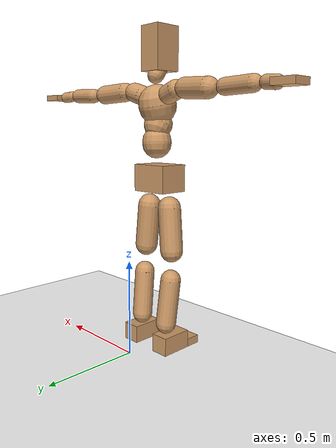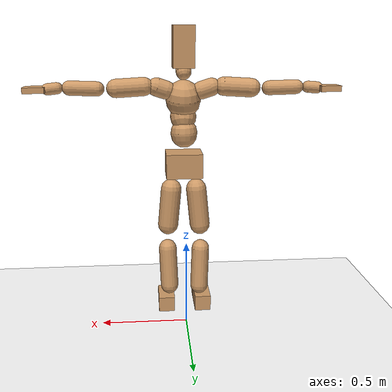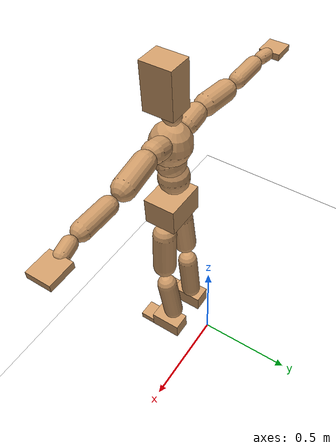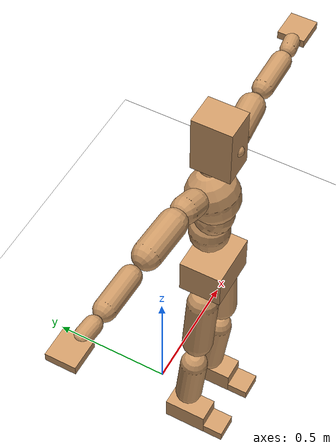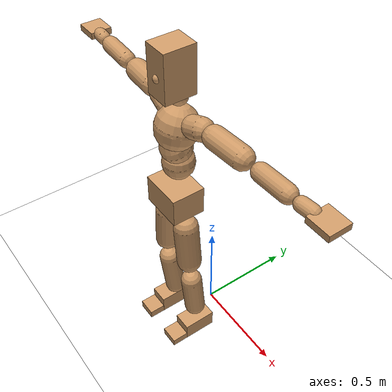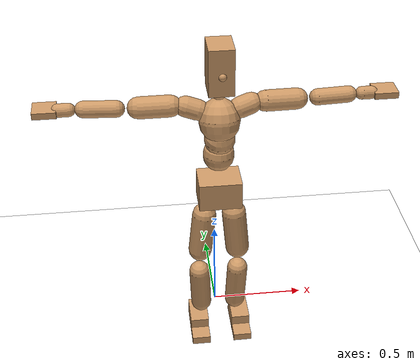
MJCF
<mujoco model="humanoid">
  <option integrator="implicitfast" />

  <visual>
    <global offwidth="1280" offheight="960" />
    <headlight active="1" ambient="0.34 0.34 0.34" diffuse="0.5 0.5 0.5" />
  </visual>

  <default>
    <joint damping="2" stiffness="2" armature="0.01" limited="true" solimplimit="0 .99 .01" />
    <geom condim="1" friction="0.7 0.005 0.0001" solimp=".99 .99 .003" solref="0.015 1" margin="0.001" rgba="0.8 0.6 .4 1" />
    <default class="smplcontact">
      <geom condim="3" friction="1. 0.005 0.0001" solref="0.015 1" solimp="0.98 0.98 0.001" priority="1" />
    </default>
    <default class="stiff_medium">
      <joint stiffness="10" />
    </default>
    <default class="stiff_medium_higher">
      <joint stiffness="50" />
    </default>
    <default class="stiff_high">
      <joint stiffness="100" />
    </default>
  </default>

  <asset>
    <texture type="skybox" builtin="gradient" rgb1="0.99 0.99 0.99" rgb2="0.608 0.828 0.892" width="100" />
    <texture builtin="flat" height="1278" mark="cross" markrgb="1 1 1" name="texgeom" random="0.01" rgb1="0.8 0.6 0.4" rgb2="0.8 0.6 0.4" type="cube" width="127" />
    <texture name="texplane" type="2d" builtin="checker" markrgb="1 1 1" rgb1="0.756 0.772 0.76" rgb2="0.6 0.6 0.6" width="100" height="100" />
    <material name="MatPlane" reflectance="0.5" texture="texplane" texrepeat="1 1" texuniform="true" />
    <material name="geom" texture="texgeom" texuniform="true" />
  </asset>

  <worldbody>
    <light name="tracking_light" pos="0 0 7" dir="0 0 -1" directional="true" cutoff="100" exponent="1" diffuse="1 1 1" specular="0.1 0.1 0.1" mode="trackcom" />
    <camera name="back" pos="0 3 2.4" xyaxes="-1 0 0 0 -1 2" mode="trackcom" />
    <camera name="side" pos="-3 0 2.4" xyaxes="0 -1 0 1 0 2" mode="trackcom" />
    <camera name="front_side" pos="-2.8 -2.8 0.8" xyaxes="0.5 -0.5 0 0.1 0.1 1" mode="trackcom" />
    <geom condim="3" name="floor" pos="0 0 0" rgba="1 1 1 1" size="100 100 .2" type="plane" material="MatPlane" />
    <body name="Pelvis" pos="-0.0018 -0.2233 0.9367" euler="90 0 0">
      <site name="Pelvis" size="0.01" />
      <freejoint name="Pelvis" />
      <geom type="box" pos="-0.0000 -0.0121 -0.0055" size="0.1069 0.0722 0.083" quat="1.0000 0.0000 0.0000 0.0000" density="3165.830099" name="Pelvis" />
      <body name="L_Hip" pos="0.0695 -0.0914 -0.0068">
        <joint name="L_Hip_x" type="hinge" pos="0 0 0" axis="1 0 0" stiffness="10.0" range="-160.0 22.92" class="stiff_medium" damping="15.0" armature="0.01"/>
        <joint name="L_Hip_y" type="hinge" pos="0 0 0" axis="0 1 0" stiffness="10.0" range="-70.0 70.0" class="stiff_medium" damping="10.000000000000002" armature="0.010000000000000005"/>
        <joint name="L_Hip_z" type="hinge" pos="0 0 0" axis="0 0 1" stiffness="10.0" range="-28.65 90.0" class="stiff_medium" damping="9.999999999999998" armature="0.009999999999999998"/>
        <geom type="capsule" density="2040.816327" fromto="0.0069 -0.075 -0.0009 0.0274 -0.3002 -0.0036" size="0.0615" name="L_Hip" />
        <body name="L_Knee" pos="0.0343 -0.3752 -0.0045">
          <joint name="L_Knee_x" type="hinge" pos="0 0 0" axis="1 0 0" range="-5.16 171.89" damping="7.999999999999999" armature="0.009999999999999998" stiffness="2.0"/>
          <joint name="L_Knee_y" type="hinge" pos="0 0 0" axis="0 1 0" range="-4.58 6.88" damping="8.000000000000002" armature="0.010000000000000007" stiffness="2.0"/>
          <joint name="L_Knee_z" type="hinge" pos="0 0 0" axis="0 0 1" range="-6.88 4.58" damping="7.999999999999999" armature="0.009999999999999998" stiffness="2.0"/>
          <geom type="capsule" density="1234.567901" fromto="-0.0027 -0.0796 -0.0087 -0.0109 -0.3184 -0.035" size="0.0541" name="L_Knee" />
          <body name="L_Ankle" pos="-0.0136 -0.398 -0.0437">
            <joint name="L_Ankle_x" type="hinge" pos="0 0 0" axis="1 0 0" range="-45.84 45.84" class="stiff_medium" damping="6.0000000000000195" armature="0.010000000000000066" stiffness="10.0"/>
            <joint name="L_Ankle_y" type="hinge" pos="0 0 0" axis="0 1 0" range="-74.48 22.92" class="stiff_medium" damping="3.0" armature="0.010000000000000002" stiffness="10.0"/>
            <joint name="L_Ankle_z" type="hinge" pos="0 0 0" axis="0 0 1" range="-4.58 4.58" class="stiff_medium" damping="5.999999999999853" armature="0.009999999999999508" stiffness="10.0"/>
            <geom type="box" pos="0.0233 -0.0239 0.0242" size="0.0483 0.0464 0.085" quat="1.0000 0.0000 0.0000 0.0000" density="449.071558" name="L_Ankle" class="smplcontact" />
            <body name="L_Toe" pos="0.0264 -0.0558 0.1193">
              <joint name="L_Toe_x" type="hinge" pos="0 0 0" axis="1 0 0" range="-91.67 22.92" armature="0.009999999999999563" damping="1.9999999999999563" stiffness="2.0"/>
              <joint name="L_Toe_y" type="hinge" pos="0 0 0" axis="0 1 0" range="-4.58 4.58" armature="0.009999999999999976" damping="1.9999999999999976" stiffness="2.0"/>
              <joint name="L_Toe_z" type="hinge" pos="0 0 0" axis="0 0 1" range="-4.58 4.58" armature="0.009999999999999872" damping="1.9999999999999871" stiffness="2.0"/>
              <geom type="box" pos="-0.003 0.0055 0.0248" size="0.0478 0.02 0.0496" quat="1.0000 0.0000 0.0000 0.0000" density="423.206892" name="L_Toe" class="smplcontact" />
            </body>
          </body>
        </body>
      </body>
      <body name="R_Hip" pos="-0.0677 -0.0905 -0.0043">
        <joint name="R_Hip_x" type="hinge" pos="0 0 0" axis="1 0 0" stiffness="10.0" range="-160.0 22.92" class="stiff_medium" damping="15.0" armature="0.01"/>
        <joint name="R_Hip_y" type="hinge" pos="0 0 0" axis="0 1 0" stiffness="10.0" range="-70.0 70.0" class="stiff_medium" damping="10.000000000000002" armature="0.010000000000000005"/>
        <joint name="R_Hip_z" type="hinge" pos="0 0 0" axis="0 0 1" stiffness="10.0" range="-90.0 28.65" class="stiff_medium" damping="9.999999999999998" armature="0.009999999999999998"/>
        <geom type="capsule" density="2040.816327" fromto="-0.0077 -0.0765 -0.0018 -0.0306 -0.3061 -0.0071" size="0.0606" name="R_Hip" />
        <body name="R_Knee" pos="-0.0383 -0.3826 -0.0089">
          <joint name="R_Knee_x" type="hinge" pos="0 0 0" axis="1 0 0" range="-5.16 171.89" damping="7.999999999999999" armature="0.009999999999999998" stiffness="2.0"/>
          <joint name="R_Knee_y" type="hinge" pos="0 0 0" axis="0 1 0" range="-6.88 4.58" damping="8.000000000000002" armature="0.010000000000000007" stiffness="2.0"/>
          <joint name="R_Knee_z" type="hinge" pos="0 0 0" axis="0 0 1" range="-4.58 6.88" damping="7.999999999999999" armature="0.009999999999999998" stiffness="2.0"/>
          <geom type="capsule" density="1234.567901" fromto="0.0032 -0.0797 -0.0085 0.0126 -0.3187 -0.0338" size="0.0541" name="R_Knee" />
          <body name="R_Ankle" pos="0.0158 -0.3984 -0.0423">
            <joint name="R_Ankle_x" type="hinge" pos="0 0 0" axis="1 0 0" range="-45.84 45.84" class="stiff_medium" damping="6.0000000000000195" armature="0.010000000000000066" stiffness="10.0"/>
            <joint name="R_Ankle_y" type="hinge" pos="0 0 0" axis="0 1 0" range="-22.92 74.48" class="stiff_medium" damping="3.0" armature="0.010000000000000002" stiffness="10.0"/>
            <joint name="R_Ankle_z" type="hinge" pos="0 0 0" axis="0 0 1" range="-4.58 4.58" class="stiff_medium" damping="5.999999999999853" armature="0.009999999999999508" stiffness="10.0"/>
            <geom type="box" pos="-0.0212 -0.0174 0.0256" size="0.0483 0.0478 0.0865" quat="1.0000 0.0000 0.0000 0.0000" density="434.700981" name="R_Ankle" class="smplcontact" />
            <body name="R_Toe" pos="-0.0254 -0.0481 0.1233">
              <joint name="R_Toe_x" type="hinge" pos="0 0 0" axis="1 0 0" range="-91.67 22.92" armature="0.009999999999999563" damping="1.9999999999999563" stiffness="2.0"/>
              <joint name="R_Toe_y" type="hinge" pos="0 0 0" axis="0 1 0" range="-4.58 4.58" armature="0.009999999999999976" damping="1.9999999999999976" stiffness="2.0"/>
              <joint name="R_Toe_z" type="hinge" pos="0 0 0" axis="0 0 1" range="-4.58 4.58" armature="0.009999999999999872" damping="1.9999999999999871" stiffness="2.0"/>
              <geom type="box" pos="0.0042 0.0045 0.0227" size="0.0479 0.0216 0.0493" quat="1.0000 0.0000 0.0000 0.0000" density="407.384095" name="R_Toe" class="smplcontact" />
            </body>
          </body>
        </body>
      </body>
      <body name="Torso" pos="-0.0025 0.109 -0.0267">
        <joint name="Torso_x" type="hinge" pos="0 0 0" axis="1 0 0" range="-25.78 57.3" class="stiff_medium" damping="14.947171773947275" armature="0.009944991970437769" stiffness="9.984609772727271"/>
        <joint name="Torso_y" type="hinge" pos="0 0 0" axis="0 1 0" range="-57.3 57.3" class="stiff_high" damping="19.969811656836875" armature="0.009998848371253175" stiffness="99.7098272727273"/>
        <joint name="Torso_z" type="hinge" pos="0 0 0" axis="0 0 1" range="-34.38 34.38" class="stiff_high" damping="19.951578052942025" armature="0.00996309672207051" stiffness="99.88497499999998"/>
        <geom type="capsule" density="2040.816327" fromto="0.0025 0.0608 0.0005 0.003 0.0743 0.0006" size="0.0769" name="Torso" />
        <body name="Spine" pos="0.0055 0.1352 0.0011">
          <joint name="Spine_x" type="hinge" pos="0 0 0" axis="1 0 0" stiffness="9.97264659090909" range="-25.78 57.3" class="stiff_medium" damping="14.906278145406802" armature="0.00990251467118218"/>
          <joint name="Spine_y" type="hinge" pos="0 0 0" axis="0 1 0" stiffness="9.972929772727273" range="-57.3 57.3" class="stiff_high" damping="7.988726639718705" armature="0.009998903716507041"/>
          <joint name="Spine_z" type="hinge" pos="0 0 0" axis="0 0 1" stiffness="19.93845727272727" range="-34.38 34.38" class="stiff_high" damping="11.954192836824214" armature="0.009954431586468174"/>
          <geom type="capsule" density="2040.816327" fromto="0.0007 0.0238 0.0114 0.0008 0.0291 0.014" size="0.0755" name="Spine" />
          <body name="Chest" pos="0.0015 0.0529 0.0254">
            <joint name="Chest_x" type="hinge" pos="0 0 0" axis="1 0 0" stiffness="9.94800590909091" range="-25.78 57.3" class="stiff_medium" damping="14.868909162809407" armature="0.009877332277543458"/>
            <joint name="Chest_y" type="hinge" pos="0 0 0" axis="0 1 0" stiffness="9.98093590909091" range="-57.3 57.3" class="stiff_high" damping="7.9924456891287" armature="0.010000187588165114"/>
            <joint name="Chest_z" type="hinge" pos="0 0 0" axis="0 0 1" stiffness="19.916765454545455" range="-34.38 34.38" class="stiff_high" damping="11.946690429040489" armature="0.009952768779220938"/>
            <geom type="capsule" density="2040.816327" fromto="-0.0009 0.0682 -0.0173 -0.001 0.0833 -0.0212" size="0.1002" name="Chest" />
            <body name="Neck" pos="-0.0028 0.2139 -0.0429">
              <joint name="Neck_x" type="hinge" pos="0 0 0" axis="1 0 0" range="-28.65 57.3" class="stiff_medium_higher" damping="9.690780533805741" armature="0.009612808295471939" stiffness="48.84692613636364"/>
              <joint name="Neck_y" type="hinge" pos="0 0 0" axis="0 1 0" range="-40.11 40.11" class="stiff_medium_higher" damping="9.804403096524636" armature="0.009843933114499562" stiffness="48.82515909090909"/>
              <joint name="Neck_z" type="hinge" pos="0 0 0" axis="0 0 1" range="-40.11 40.11" class="stiff_medium_higher" damping="9.68205276444564" armature="0.009607499285606658" stiffness="48.78592386363636"/>
              <geom type="capsule" density="1000" fromto="0.001 0.013 0.0103 0.0041 0.052 0.0411" size="0.0436" name="Neck" />
              <body name="Head" pos="0.00507 0.063375 0.0500175">
                <joint name="Head_x" type="hinge" pos="0 0 0" axis="1 0 0" range="-28.65 57.3" class="stiff_medium_higher" damping="1.9477960607098663" armature="0.009727973061838134" stiffness="48.75000000000001"/>
                <joint name="Head_y" type="hinge" pos="0 0 0" axis="0 1 0" range="-40.11 40.11" class="stiff_medium_higher" damping="1.9725930222531005" armature="0.009977239054978514" stiffness="48.75000000000001"/>
                <joint name="Head_z" type="hinge" pos="0 0 0" axis="0 0 1" range="-40.11 40.11" class="stiff_medium_higher" damping="1.9465600502137563" armature="0.00971563084381585" stiffness="48.75000000000001"/>
                <geom type="box" pos="-0.004095 0.08541 -0.01131" size="0.0606 0.1154 0.076" quat="1.0000 0.0000 0.0000 0.0000" density="1018.069894" name="Head" />
                <geom type="capsule" name="nose" size="0.02 0.01" pos="0 0.06825 0.04875" quat="1 0 0 0" mass="0" contype="0" conaffinity="0" />
              </body>
            </body>
            <body name="L_Thorax" pos="0.0788 0.1217 -0.0341">
              <joint name="L_Thorax_x" type="hinge" pos="0 0 0" axis="1 0 0" range="-10.89 4.58" class="stiff_medium_higher" damping="19.999999999999975" armature="0.009999999999999978" stiffness="50.0"/>
              <joint name="L_Thorax_y" type="hinge" pos="0 0 0" axis="0 1 0" range="-28.65 17.19" class="stiff_medium_higher" damping="20.0" armature="0.01" stiffness="50.0"/>
              <joint name="L_Thorax_z" type="hinge" pos="0 0 0" axis="0 0 1" range="-31.51 40.11" class="stiff_medium_higher" damping="19.999999999999996" armature="0.009999999999999998" stiffness="50.0"/>
              <geom type="capsule" density="1000" fromto="0.0182 0.0061 -0.0018 0.0728 0.0244 -0.0071" size="0.0521" name="L_Thorax" />
              <body name="L_Shoulder" pos="0.091 0.0305 -0.0089">
                <joint name="L_Shoulder_x" type="hinge" pos="0 0 0" axis="1 0 0" range="-97.4 97.4" class="stiff_medium" damping="6.000000000000061" armature="0.010000000000000205" stiffness="10.0"/>
                <joint name="L_Shoulder_y" type="hinge" pos="0 0 0" axis="0 1 0" range="-108.86 80.21" class="stiff_medium" damping="6.0" armature="0.01" stiffness="10.0"/>
                <joint name="L_Shoulder_z" type="hinge" pos="0 0 0" axis="0 0 1" range="-97.4 85.94" class="stiff_medium" damping="6.000000000000002" armature="0.010000000000000005" stiffness="10.0"/>
                <geom type="capsule" density="1000" fromto="0.0519 -0.0026 -0.0055 0.2077 -0.0102 -0.022" size="0.0517" name="L_Shoulder" />
                <body name="L_Elbow" pos="0.2596 -0.0128 -0.0275">
                  <joint name="L_Elbow_x" type="hinge" pos="0 0 0" axis="1 0 0" range="-17.19 4.58" damping="4.999999999999982" armature="0.009999999999999929" stiffness="2.0"/>
                  <joint name="L_Elbow_y" type="hinge" pos="0 0 0" axis="0 1 0" range="-180.0 17.19" damping="5.000000000000005" armature="0.010000000000000023" stiffness="2.0"/>
                  <joint name="L_Elbow_z" type="hinge" pos="0 0 0" axis="0 0 1" range="-100.84 4.58" damping="5.000000000000002" armature="0.010000000000000009" stiffness="2.0"/>
                  <geom type="capsule" density="1000" fromto="0.0498 0.0018 -0.0002 0.1994 0.0072 -0.0009" size="0.0405" name="L_Elbow" />
                  <body name="L_Wrist" pos="0.2492 0.009 -0.0012">
                    <joint name="L_Wrist_x" type="hinge" pos="0 0 0" axis="1 0 0" range="-180.0 22.92" armature="0.009999999999999619" damping="1.9999999999999618" stiffness="2.0"/>
                    <joint name="L_Wrist_y" type="hinge" pos="0 0 0" axis="0 1 0" range="-17.19 17.19" armature="0.010000000000000047" damping="2.0000000000000044" stiffness="2.0"/>
                    <joint name="L_Wrist_z" type="hinge" pos="0 0 0" axis="0 0 1" range="-22.92 22.92" armature="0.010000000000000009" damping="2.000000000000001" stiffness="2.0"/>
                    <geom type="capsule" density="1000" fromto="0.0168 -0.0016 -0.003 0.0672 -0.0065 -0.012" size="0.0318" name="L_Wrist" class="smplcontact" />
                    <body name="L_Hand" pos="0.084 -0.0082 -0.0149">
                      <joint name="L_Hand_x" type="hinge" pos="0 0 0" axis="1 0 0" range="-17.19 17.19" armature="0.010000000000000018" damping="2.0000000000000018" stiffness="2.0"/>
                      <joint name="L_Hand_y" type="hinge" pos="0 0 0" axis="0 1 0" range="-51.57 51.57" armature="0.010000000000000174" damping="2.0000000000000173" stiffness="2.0"/>
                      <joint name="L_Hand_z" type="hinge" pos="0 0 0" axis="0 0 1" range="-91.67 91.67" armature="0.010000000000000252" damping="2.000000000000025" stiffness="2.0"/>
                      <geom type="box" pos="0.0493 0.001 -0.0058" size="0.0585 0.0158 0.0538" quat="1.0000 0.0000 0.0000 0.0000" density="400.552564" name="L_Hand" class="smplcontact" />
                    </body>
                  </body>
                </body>
              </body>
            </body>
            <body name="R_Thorax" pos="-0.0818 0.1188 -0.0386">
              <joint name="R_Thorax_x" type="hinge" pos="0 0 0" axis="1 0 0" range="-10.89 4.58" class="stiff_medium_higher" damping="19.999999999999975" armature="0.009999999999999978" stiffness="50.0"/>
              <joint name="R_Thorax_y" type="hinge" pos="0 0 0" axis="0 1 0" range="-17.19 28.65" class="stiff_medium_higher" damping="20.0" armature="0.01" stiffness="50.0"/>
              <joint name="R_Thorax_z" type="hinge" pos="0 0 0" axis="0 0 1" range="-40.11 31.51" class="stiff_medium_higher" damping="19.999999999999996" armature="0.009999999999999998" stiffness="50.0"/>
              <geom type="capsule" density="1000" fromto="-0.0192 0.0065 -0.0018 -0.0768 0.026 -0.0073" size="0.0511" name="R_Thorax" />
              <body name="R_Shoulder" pos="-0.096 0.0326 -0.0091">
                <joint name="R_Shoulder_x" type="hinge" pos="0 0 0" axis="1 0 0" range="-97.4 97.4" class="stiff_medium" damping="6.000000000000061" armature="0.010000000000000205" stiffness="10.0"/>
                <joint name="R_Shoulder_y" type="hinge" pos="0 0 0" axis="0 1 0" range="-80.21 108.86" class="stiff_medium" damping="6.0" armature="0.01" stiffness="10.0"/>
                <joint name="R_Shoulder_z" type="hinge" pos="0 0 0" axis="0 0 1" range="-85.94 97.4" class="stiff_medium" damping="6.000000000000002" armature="0.010000000000000005" stiffness="10.0"/>
                <geom type="capsule" density="1000" fromto="-0.0507 -0.0027 -0.0043 -0.203 -0.0107 -0.0171" size="0.0531" name="R_Shoulder" />
                <body name="R_Elbow" pos="-0.2537 -0.0133 -0.0214">
                  <joint name="R_Elbow_x" type="hinge" pos="0 0 0" axis="1 0 0" range="-17.19 4.58" damping="4.999999999999982" armature="0.009999999999999929" stiffness="2.0"/>
                  <joint name="R_Elbow_y" type="hinge" pos="0 0 0" axis="0 1 0" range="-17.19 180.0" damping="5.000000000000005" armature="0.010000000000000023" stiffness="2.0"/>
                  <joint name="R_Elbow_z" type="hinge" pos="0 0 0" axis="0 0 1" range="-4.58 100.84" damping="5.000000000000002" armature="0.010000000000000009" stiffness="2.0"/>
                  <geom type="capsule" density="1000" fromto="-0.0511 0.0016 -0.0011 -0.2042 0.0062 -0.0044" size="0.0408" name="R_Elbow" />
                  <body name="R_Wrist" pos="-0.2553 0.0078 -0.0056">
                    <joint name="R_Wrist_x" type="hinge" pos="0 0 0" axis="1 0 0" range="-180.0 22.92" armature="0.009999999999999619" damping="1.9999999999999618" stiffness="2.0"/>
                    <joint name="R_Wrist_y" type="hinge" pos="0 0 0" axis="0 1 0" range="-17.19 17.19" armature="0.010000000000000047" damping="2.0000000000000044" stiffness="2.0"/>
                    <joint name="R_Wrist_z" type="hinge" pos="0 0 0" axis="0 0 1" range="-22.92 22.92" armature="0.010000000000000009" damping="2.000000000000001" stiffness="2.0"/>
                    <geom type="capsule" density="1000" fromto="-0.0169 -0.0012 -0.0021 -0.0677 -0.0049 -0.0083" size="0.0326" name="R_Wrist" class="smplcontact" />
                    <body name="R_Hand" pos="-0.0846 -0.0061 -0.0103">
                      <joint name="R_Hand_x" type="hinge" pos="0 0 0" axis="1 0 0" range="-17.19 17.19" armature="0.010000000000000018" damping="2.0000000000000018" stiffness="2.0"/>
                      <joint name="R_Hand_y" type="hinge" pos="0 0 0" axis="0 1 0" range="-51.57 51.57" armature="0.010000000000000174" damping="2.0000000000000173" stiffness="2.0"/>
                      <joint name="R_Hand_z" type="hinge" pos="0 0 0" axis="0 0 1" range="-91.67 91.67" armature="0.010000000000000252" damping="2.000000000000025" stiffness="2.0"/>
                      <geom type="box" pos="-0.0462 -0.0009 -0.0079" size="0.0569 0.0164 0.0546" quat="1.0000 0.0000 0.0000 0.0000" density="403.679611" name="R_Hand" class="smplcontact" />
                    </body>
                  </body>
                </body>
              </body>
            </body>
          </body>
        </body>
      </body>
    </body>
  </worldbody>
  <actuator>
    <general name="L_Hip_x" joint="L_Hip_x" biastype="affine" gainprm="287.33006409732246" biasprm="-215.3247604770444 -180.0 -2.0" ctrllimited="true" ctrlrange="-1 1" forcerange="-360.0 360.0" />
    <general name="L_Hip_y" joint="L_Hip_y" biastype="affine" gainprm="219.9114857512855" biasprm="0.0 -180.0 -2.0000000000000004" ctrllimited="true" ctrlrange="-1 1" forcerange="-360.0 360.0" />
    <general name="L_Hip_z" joint="L_Hip_z" biastype="affine" gainprm="186.3749841742145" biasprm="96.3683546488669 -180.0 -1.9999999999999998" ctrllimited="true" ctrlrange="-1 1" forcerange="-360.0 360.0" />
    <general name="L_Knee_x" joint="L_Knee_x" biastype="affine" gainprm="278.10948965903646" biasprm="261.8988715665131 -180.0 -1.9999999999999998" ctrllimited="true" ctrlrange="-1 1" forcerange="-360.0 360.0" />
    <general name="L_Knee_y" joint="L_Knee_y" biastype="affine" gainprm="18.001325905069514" biasprm="3.612831551628262 -180.0 -2.0000000000000004" ctrllimited="true" ctrlrange="-1 1" forcerange="-360.0 360.0" />
    <general name="L_Knee_z" joint="L_Knee_z" biastype="affine" gainprm="18.001325905069514" biasprm="-3.612831551628262 -180.0 -1.9999999999999998" ctrllimited="true" ctrlrange="-1 1" forcerange="-360.0 360.0" />
    <general name="L_Ankle_x" joint="L_Ankle_x" biastype="affine" gainprm="72.00530362027807" biasprm="0.0 -90.0 -2.0000000000000067" ctrllimited="true" ctrlrange="-1 1" forcerange="-180.0 180.0" />
    <general name="L_Ankle_y" joint="L_Ankle_y" biastype="affine" gainprm="76.49778111491148" biasprm="-40.49512930477244 -90.0 -2.0" ctrllimited="true" ctrlrange="-1 1" forcerange="-180.0 180.0" />
    <general name="L_Ankle_z" joint="L_Ankle_z" biastype="affine" gainprm="7.1942471767206255" biasprm="0.0 -90.0 -1.9999999999999507" ctrllimited="true" ctrlrange="-1 1" forcerange="-180.0 180.0" />
    <general name="L_Toe_x" joint="L_Toe_x" biastype="affine" gainprm="71.99902043497087" biasprm="-43.19689898685965 -72.0 -0.7999999999999825" ctrllimited="true" ctrlrange="-1 1" forcerange="-144.0 144.0" />
    <general name="L_Toe_y" joint="L_Toe_y" biastype="affine" gainprm="5.755397741376501" biasprm="0.0 -72.0 -0.799999999999999" ctrllimited="true" ctrlrange="-1 1" forcerange="-144.0 144.0" />
    <general name="L_Toe_z" joint="L_Toe_z" biastype="affine" gainprm="5.755397741376501" biasprm="0.0 -72.0 -0.7999999999999949" ctrllimited="true" ctrlrange="-1 1" forcerange="-144.0 144.0" />
    <general name="R_Hip_x" joint="R_Hip_x" biastype="affine" gainprm="287.33006409732246" biasprm="-215.3247604770444 -180.0 -2.0" ctrllimited="true" ctrlrange="-1 1" forcerange="-360.0 360.0" />
    <general name="R_Hip_y" joint="R_Hip_y" biastype="affine" gainprm="219.9114857512855" biasprm="0.0 -180.0 -2.0000000000000004" ctrllimited="true" ctrlrange="-1 1" forcerange="-360.0 360.0" />
    <general name="R_Hip_z" joint="R_Hip_z" biastype="affine" gainprm="186.3749841742145" biasprm="-96.3683546488669 -180.0 -1.9999999999999998" ctrllimited="true" ctrlrange="-1 1" forcerange="-360.0 360.0" />
    <general name="R_Knee_x" joint="R_Knee_x" biastype="affine" gainprm="278.10948965903646" biasprm="261.8988715665131 -180.0 -1.9999999999999998" ctrllimited="true" ctrlrange="-1 1" forcerange="-360.0 360.0" />
    <general name="R_Knee_y" joint="R_Knee_y" biastype="affine" gainprm="18.001325905069514" biasprm="-3.612831551628262 -180.0 -2.0000000000000004" ctrllimited="true" ctrlrange="-1 1" forcerange="-360.0 360.0" />
    <general name="R_Knee_z" joint="R_Knee_z" biastype="affine" gainprm="18.001325905069514" biasprm="3.612831551628262 -180.0 -1.9999999999999998" ctrllimited="true" ctrlrange="-1 1" forcerange="-360.0 360.0" />
    <general name="R_Ankle_x" joint="R_Ankle_x" biastype="affine" gainprm="72.00530362027807" biasprm="0.0 -90.0 -2.0000000000000067" ctrllimited="true" ctrlrange="-1 1" forcerange="-180.0 180.0" />
    <general name="R_Ankle_y" joint="R_Ankle_y" biastype="affine" gainprm="76.49778111491148" biasprm="40.49512930477244 -90.0 -2.0" ctrllimited="true" ctrlrange="-1 1" forcerange="-180.0 180.0" />
    <general name="R_Ankle_z" joint="R_Ankle_z" biastype="affine" gainprm="7.1942471767206255" biasprm="0.0 -90.0 -1.9999999999999507" ctrllimited="true" ctrlrange="-1 1" forcerange="-180.0 180.0" />
    <general name="R_Toe_x" joint="R_Toe_x" biastype="affine" gainprm="71.99902043497087" biasprm="-43.19689898685965 -72.0 -0.7999999999999825" ctrllimited="true" ctrlrange="-1 1" forcerange="-144.0 144.0" />
    <general name="R_Toe_y" joint="R_Toe_y" biastype="affine" gainprm="5.755397741376501" biasprm="0.0 -72.0 -0.799999999999999" ctrllimited="true" ctrlrange="-1 1" forcerange="-144.0 144.0" />
    <general name="R_Toe_z" joint="R_Toe_z" biastype="affine" gainprm="5.755397741376501" biasprm="0.0 -72.0 -0.7999999999999949" ctrllimited="true" ctrlrange="-1 1" forcerange="-144.0 144.0" />
    <general name="Torso_x" joint="Torso_x" biastype="affine" gainprm="173.73455154310852" biasprm="65.91373452863239 -239.63063454545454 -3.9859124730526068" ctrllimited="true" ctrlrange="-1 1" forcerange="-359.4459518181818 359.4459518181818" />
    <general name="Torso_y" joint="Torso_y" biastype="affine" gainprm="239.32121288994034" biasprm="0.0 -239.3035854545455 -3.9939623313673747" ctrllimited="true" ctrlrange="-1 1" forcerange="-358.9553781818183 358.9553781818183" />
    <general name="Torso_z" joint="Torso_z" biastype="affine" gainprm="143.84495903957767" biasprm="0.0 -239.72393999999997 -3.990315610588405" ctrllimited="true" ctrlrange="-1 1" forcerange="-359.58590999999996 359.58590999999996" />
    <general name="Spine_x" joint="Spine_x" biastype="affine" gainprm="173.52638937397822" biasprm="65.83475918473509 -239.34351818181815 -3.975007505441814" ctrllimited="true" ctrlrange="-1 1" forcerange="-359.01527727272725 359.01527727272725" />
    <general name="Spine_y" joint="Spine_y" biastype="affine" gainprm="239.3679454229793" biasprm="0.0 -239.35031454545455 -3.9943633198593527" ctrllimited="true" ctrlrange="-1 1" forcerange="-359.0254718181818 359.0254718181818" />
    <general name="Spine_z" joint="Spine_z" biastype="affine" gainprm="143.56746696426686" biasprm="0.0 -239.26148727272724 -3.9847309456080713" ctrllimited="true" ctrlrange="-1 1" forcerange="-358.89223090909087 358.89223090909087" />
    <general name="Chest_x" joint="Chest_x" biastype="affine" gainprm="173.09763573183875" biasprm="65.67209290163163 -238.75214181818183 -3.9650424434158418" ctrllimited="true" ctrlrange="-1 1" forcerange="-358.12821272727274 358.12821272727274" />
    <general name="Chest_y" joint="Chest_y" biastype="affine" gainprm="239.5601068495423" biasprm="0.0 -239.54246181818183 -3.99622284456435" ctrllimited="true" ctrlrange="-1 1" forcerange="-359.3136927272728 359.3136927272728" />
    <general name="Chest_z" joint="Chest_z" biastype="affine" gainprm="143.4112743688411" biasprm="0.0 -239.00118545454546 -3.982230143013496" ctrllimited="true" ctrlrange="-1 1" forcerange="-358.50177818181817 358.50177818181817" />
    <general name="Neck_x" joint="Neck_x" biastype="affine" gainprm="26.379283105246195" biasprm="8.7930943684154 -35.16978681818182 -0.7752624427044593" ctrllimited="true" ctrlrange="-1 1" forcerange="-70.33957363636364 70.33957363636364" />
    <general name="Neck_y" joint="Neck_y" biastype="affine" gainprm="24.60969283254502" biasprm="0.0 -35.15411454545455 -0.7843522477219709" ctrllimited="true" ctrlrange="-1 1" forcerange="-70.3082290909091 70.3082290909091" />
    <general name="Neck_z" joint="Neck_z" biastype="affine" gainprm="24.589916821378335" biasprm="0.0 -35.12586518181818 -0.7745642211556512" ctrllimited="true" ctrlrange="-1 1" forcerange="-70.25173036363636 70.25173036363636" />
    <general name="Head_x" joint="Head_x" biastype="affine" gainprm="17.551292757442777" biasprm="5.850430919147593 -23.400000000000002 -0.7791184242839466" ctrllimited="true" ctrlrange="-1 1" forcerange="-46.800000000000004 46.800000000000004" />
    <general name="Head_y" joint="Head_y" biastype="affine" gainprm="16.38120657361326" biasprm="0.0 -23.400000000000002 -0.7890372089012403" ctrllimited="true" ctrlrange="-1 1" forcerange="-46.800000000000004 46.800000000000004" />
    <general name="Head_z" joint="Head_z" biastype="affine" gainprm="16.38120657361326" biasprm="0.0 -23.400000000000002 -0.7786240200855026" ctrllimited="true" ctrlrange="-1 1" forcerange="-46.800000000000004 46.800000000000004" />
    <general name="L_Thorax_x" joint="L_Thorax_x" biastype="affine" gainprm="16.200146117011364" biasprm="-6.6078165480505335 -120.0 -1.599999999999998" ctrllimited="true" ctrlrange="-1 1" forcerange="-240.0 240.0" />
    <general name="L_Thorax_y" joint="L_Thorax_y" biastype="affine" gainprm="48.00353574685204" biasprm="-12.00088393671301 -120.0 -1.6" ctrllimited="true" ctrlrange="-1 1" forcerange="-240.0 240.0" />
    <general name="L_Thorax_z" joint="L_Thorax_z" biastype="affine" gainprm="75.00028861670033" biasprm="9.00589894029074 -120.0 -1.5999999999999999" ctrllimited="true" ctrlrange="-1 1" forcerange="-240.0 240.0" />
    <general name="L_Shoulder_x" joint="L_Shoulder_x" biastype="affine" gainprm="81.5976331892389" biasprm="0.0 -48.0 -1.6000000000000165" ctrllimited="true" ctrlrange="-1 1" forcerange="-96.0 96.0" />
    <general name="L_Shoulder_y" joint="L_Shoulder_y" biastype="affine" gainprm="79.19745640189629" biasprm="-12.00088393671301 -48.0 -1.6" ctrllimited="true" ctrlrange="-1 1" forcerange="-96.0 96.0" />
    <general name="L_Shoulder_z" joint="L_Shoulder_z" biastype="affine" gainprm="76.79727961455369" biasprm="-4.800353574685214 -48.0 -1.6000000000000005" ctrllimited="true" ctrlrange="-1 1" forcerange="-96.0 96.0" />
    <general name="L_Elbow_x" joint="L_Elbow_x" biastype="affine" gainprm="13.67849441372996" biasprm="-7.923096672353461 -72.0 -0.7999999999999972" ctrllimited="true" ctrlrange="-1 1" forcerange="-144.0 144.0" />
    <general name="L_Elbow_y" joint="L_Elbow_y" biastype="affine" gainprm="123.89813107227425" biasprm="-102.29653998619085 -72.0 -0.8000000000000009" ctrllimited="true" ctrlrange="-1 1" forcerange="-144.0 144.0" />
    <general name="L_Elbow_z" joint="L_Elbow_z" biastype="affine" gainprm="66.23733950828719" biasprm="-60.4819417669107 -72.0 -0.8000000000000004" ctrllimited="true" ctrlrange="-1 1" forcerange="-144.0 144.0" />
    <general name="L_Wrist_x" joint="L_Wrist_x" biastype="affine" gainprm="21.24973270888136" biasprm="-16.449379134196157 -12.0 -0.7999999999999847" ctrllimited="true" ctrlrange="-1 1" forcerange="-24.0 24.0" />
    <general name="L_Wrist_y" joint="L_Wrist_y" biastype="affine" gainprm="3.6002651810139037" biasprm="0.0 -12.0 -0.8000000000000018" ctrllimited="true" ctrlrange="-1 1" forcerange="-24.0 24.0" />
    <general name="L_Wrist_z" joint="L_Wrist_z" biastype="affine" gainprm="4.800353574685205" biasprm="0.0 -12.0 -0.8000000000000004" ctrllimited="true" ctrlrange="-1 1" forcerange="-24.0 24.0" />
    <general name="L_Hand_x" joint="L_Hand_x" biastype="affine" gainprm="3.6002651810139037" biasprm="0.0 -12.0 -0.8000000000000007" ctrllimited="true" ctrlrange="-1 1" forcerange="-24.0 24.0" />
    <general name="L_Hand_y" joint="L_Hand_y" biastype="affine" gainprm="10.800795543041708" biasprm="0.0 -12.0 -0.8000000000000069" ctrllimited="true" ctrlrange="-1 1" forcerange="-24.0 24.0" />
    <general name="L_Hand_z" joint="L_Hand_z" biastype="affine" gainprm="19.199319903638422" biasprm="0.0 -12.0 -0.80000000000001" ctrllimited="true" ctrlrange="-1 1" forcerange="-24.0 24.0" />
    <general name="R_Thorax_x" joint="R_Thorax_x" biastype="affine" gainprm="16.200146117011364" biasprm="-6.6078165480505335 -120.0 -1.599999999999998" ctrllimited="true" ctrlrange="-1 1" forcerange="-240.0 240.0" />
    <general name="R_Thorax_y" joint="R_Thorax_y" biastype="affine" gainprm="48.00353574685204" biasprm="12.000883936713002 -120.0 -1.6" ctrllimited="true" ctrlrange="-1 1" forcerange="-240.0 240.0" />
    <general name="R_Thorax_z" joint="R_Thorax_z" biastype="affine" gainprm="75.00028861670033" biasprm="-9.00589894029074 -120.0 -1.5999999999999999" ctrllimited="true" ctrlrange="-1 1" forcerange="-240.0 240.0" />
    <general name="R_Shoulder_x" joint="R_Shoulder_x" biastype="affine" gainprm="81.5976331892389" biasprm="0.0 -48.0 -1.6000000000000165" ctrllimited="true" ctrlrange="-1 1" forcerange="-96.0 96.0" />
    <general name="R_Shoulder_y" joint="R_Shoulder_y" biastype="affine" gainprm="79.19745640189629" biasprm="12.00088393671301 -48.0 -1.6" ctrllimited="true" ctrlrange="-1 1" forcerange="-96.0 96.0" />
    <general name="R_Shoulder_z" joint="R_Shoulder_z" biastype="affine" gainprm="76.79727961455369" biasprm="4.800353574685204 -48.0 -1.6000000000000005" ctrllimited="true" ctrlrange="-1 1" forcerange="-96.0 96.0" />
    <general name="R_Elbow_x" joint="R_Elbow_x" biastype="affine" gainprm="13.67849441372996" biasprm="-7.923096672353461 -72.0 -0.7999999999999972" ctrllimited="true" ctrlrange="-1 1" forcerange="-144.0 144.0" />
    <general name="R_Elbow_y" joint="R_Elbow_y" biastype="affine" gainprm="123.89813107227425" biasprm="102.29653998619085 -72.0 -0.8000000000000009" ctrllimited="true" ctrlrange="-1 1" forcerange="-144.0 144.0" />
    <general name="R_Elbow_z" joint="R_Elbow_z" biastype="affine" gainprm="66.23733950828719" biasprm="60.481941766910694 -72.0 -0.8000000000000004" ctrllimited="true" ctrlrange="-1 1" forcerange="-144.0 144.0" />
    <general name="R_Wrist_x" joint="R_Wrist_x" biastype="affine" gainprm="21.24973270888136" biasprm="-16.449379134196157 -12.0 -0.7999999999999847" ctrllimited="true" ctrlrange="-1 1" forcerange="-24.0 24.0" />
    <general name="R_Wrist_y" joint="R_Wrist_y" biastype="affine" gainprm="3.6002651810139037" biasprm="0.0 -12.0 -0.8000000000000018" ctrllimited="true" ctrlrange="-1 1" forcerange="-24.0 24.0" />
    <general name="R_Wrist_z" joint="R_Wrist_z" biastype="affine" gainprm="4.800353574685205" biasprm="0.0 -12.0 -0.8000000000000004" ctrllimited="true" ctrlrange="-1 1" forcerange="-24.0 24.0" />
    <general name="R_Hand_x" joint="R_Hand_x" biastype="affine" gainprm="3.6002651810139037" biasprm="0.0 -12.0 -0.8000000000000007" ctrllimited="true" ctrlrange="-1 1" forcerange="-24.0 24.0" />
    <general name="R_Hand_y" joint="R_Hand_y" biastype="affine" gainprm="10.800795543041708" biasprm="0.0 -12.0 -0.8000000000000069" ctrllimited="true" ctrlrange="-1 1" forcerange="-24.0 24.0" />
    <general name="R_Hand_z" joint="R_Hand_z" biastype="affine" gainprm="19.199319903638422" biasprm="0.0 -12.0 -0.80000000000001" ctrllimited="true" ctrlrange="-1 1" forcerange="-24.0 24.0" />
  </actuator>
  <contact>
    <exclude body1="Torso" body2="Chest" />
    <exclude body1="Head" body2="Chest" />
    <exclude body1="R_Knee" body2="R_Toe" />
    <exclude body1="R_Knee" body2="L_Ankle" />
    <exclude body1="R_Knee" body2="L_Toe" />
    <exclude body1="L_Knee" body2="L_Toe" />
    <exclude body1="L_Knee" body2="R_Ankle" />
    <exclude body1="L_Knee" body2="R_Toe" />
    <exclude body1="L_Shoulder" body2="Chest" />
    <exclude body1="R_Shoulder" body2="Chest" />
  </contact>
  <sensor>
    <framelinvel name="sensor_Pelvis_framelinvel" objtype="xbody" objname="Pelvis" />
    <framelinvel name="sensor_L_Hip_framelinvel" objtype="xbody" objname="L_Hip" />
    <framelinvel name="sensor_L_Knee_framelinvel" objtype="xbody" objname="L_Knee" />
    <framelinvel name="sensor_L_Ankle_framelinvel" objtype="xbody" objname="L_Ankle" />
    <framelinvel name="sensor_L_Toe_framelinvel" objtype="xbody" objname="L_Toe" />
    <framelinvel name="sensor_R_Hip_framelinvel" objtype="xbody" objname="R_Hip" />
    <framelinvel name="sensor_R_Knee_framelinvel" objtype="xbody" objname="R_Knee" />
    <framelinvel name="sensor_R_Ankle_framelinvel" objtype="xbody" objname="R_Ankle" />
    <framelinvel name="sensor_R_Toe_framelinvel" objtype="xbody" objname="R_Toe" />
    <framelinvel name="sensor_Torso_framelinvel" objtype="xbody" objname="Torso" />
    <framelinvel name="sensor_Spine_framelinvel" objtype="xbody" objname="Spine" />
    <framelinvel name="sensor_Chest_framelinvel" objtype="xbody" objname="Chest" />
    <framelinvel name="sensor_Neck_framelinvel" objtype="xbody" objname="Neck" />
    <framelinvel name="sensor_Head_framelinvel" objtype="xbody" objname="Head" />
    <framelinvel name="sensor_L_Thorax_framelinvel" objtype="xbody" objname="L_Thorax" />
    <framelinvel name="sensor_L_Shoulder_framelinvel" objtype="xbody" objname="L_Shoulder" />
    <framelinvel name="sensor_L_Elbow_framelinvel" objtype="xbody" objname="L_Elbow" />
    <framelinvel name="sensor_L_Wrist_framelinvel" objtype="xbody" objname="L_Wrist" />
    <framelinvel name="sensor_L_Hand_framelinvel" objtype="xbody" objname="L_Hand" />
    <framelinvel name="sensor_R_Thorax_framelinvel" objtype="xbody" objname="R_Thorax" />
    <framelinvel name="sensor_R_Shoulder_framelinvel" objtype="xbody" objname="R_Shoulder" />
    <framelinvel name="sensor_R_Elbow_framelinvel" objtype="xbody" objname="R_Elbow" />
    <framelinvel name="sensor_R_Wrist_framelinvel" objtype="xbody" objname="R_Wrist" />
    <framelinvel name="sensor_R_Hand_framelinvel" objtype="xbody" objname="R_Hand" />
    <frameangvel name="sensor_Pelvis_frameangvel" objtype="xbody" objname="Pelvis" />
    <frameangvel name="sensor_L_Hip_frameangvel" objtype="xbody" objname="L_Hip" />
    <frameangvel name="sensor_L_Knee_frameangvel" objtype="xbody" objname="L_Knee" />
    <frameangvel name="sensor_L_Ankle_frameangvel" objtype="xbody" objname="L_Ankle" />
    <frameangvel name="sensor_L_Toe_frameangvel" objtype="xbody" objname="L_Toe" />
    <frameangvel name="sensor_R_Hip_frameangvel" objtype="xbody" objname="R_Hip" />
    <frameangvel name="sensor_R_Knee_frameangvel" objtype="xbody" objname="R_Knee" />
    <frameangvel name="sensor_R_Ankle_frameangvel" objtype="xbody" objname="R_Ankle" />
    <frameangvel name="sensor_R_Toe_frameangvel" objtype="xbody" objname="R_Toe" />
    <frameangvel name="sensor_Torso_frameangvel" objtype="xbody" objname="Torso" />
    <frameangvel name="sensor_Spine_frameangvel" objtype="xbody" objname="Spine" />
    <frameangvel name="sensor_Chest_frameangvel" objtype="xbody" objname="Chest" />
    <frameangvel name="sensor_Neck_frameangvel" objtype="xbody" objname="Neck" />
    <frameangvel name="sensor_Head_frameangvel" objtype="xbody" objname="Head" />
    <frameangvel name="sensor_L_Thorax_frameangvel" objtype="xbody" objname="L_Thorax" />
    <frameangvel name="sensor_L_Shoulder_frameangvel" objtype="xbody" objname="L_Shoulder" />
    <frameangvel name="sensor_L_Elbow_frameangvel" objtype="xbody" objname="L_Elbow" />
    <frameangvel name="sensor_L_Wrist_frameangvel" objtype="xbody" objname="L_Wrist" />
    <frameangvel name="sensor_L_Hand_frameangvel" objtype="xbody" objname="L_Hand" />
    <frameangvel name="sensor_R_Thorax_frameangvel" objtype="xbody" objname="R_Thorax" />
    <frameangvel name="sensor_R_Shoulder_frameangvel" objtype="xbody" objname="R_Shoulder" />
    <frameangvel name="sensor_R_Elbow_frameangvel" objtype="xbody" objname="R_Elbow" />
    <frameangvel name="sensor_R_Wrist_frameangvel" objtype="xbody" objname="R_Wrist" />
    <frameangvel name="sensor_R_Hand_frameangvel" objtype="xbody" objname="R_Hand" />
    <subtreelinvel name="Chest_subtreelinvel" body="Chest" />
    <gyro name="Pelvis_gyro" site="Pelvis" />
  </sensor>
</mujoco>
